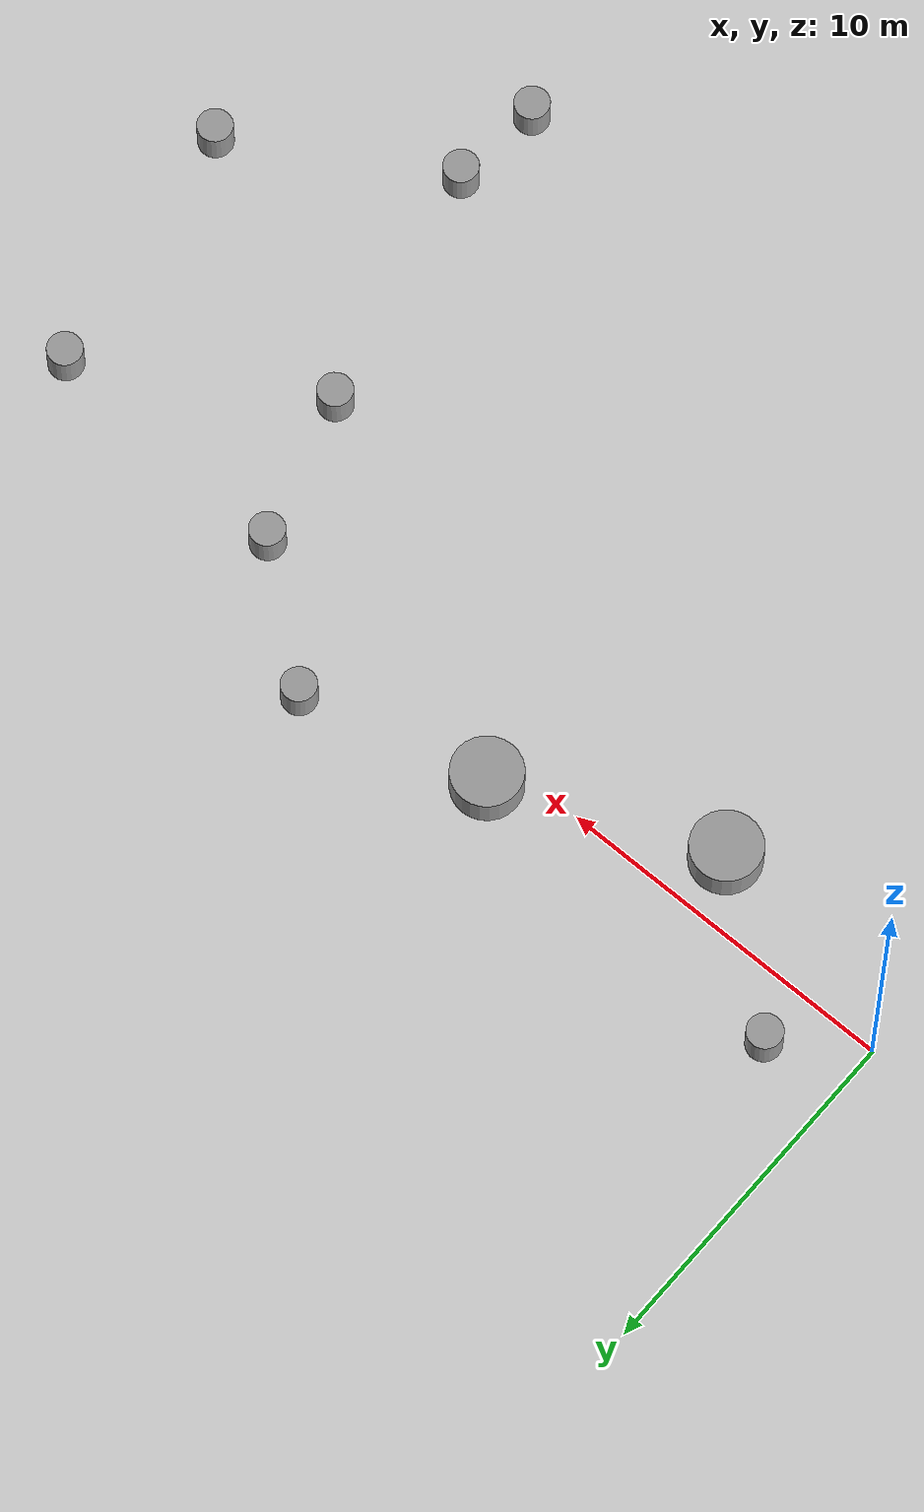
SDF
<sdf version="1.7">
 <world name="default">
  <light name="sun" type="directional">
   <pose>0 0 10 0 -0 0</pose>
   <diffuse>0.8 0.8 0.8 1</diffuse>
   <specular>0.2 0.2 0.2 1</specular>
   <attenuation>
    <range>1000</range>
    <constant>0.9</constant>
    <linear>0.01</linear>
    <quadratic>0.001</quadratic>
   </attenuation>
   <direction>-0.5 0.1 -0.9</direction>
   <spot><inner_angle>0</inner_angle><outer_angle>0</outer_angle><falloff>0</falloff></spot>
  </light>
  <model name="ground_plane">
   <static>1</static>
   <link name="link">
    <collision name="collision">
     <geometry><plane><normal>0 0 1</normal><size>100 100</size></plane></geometry>
     <surface><friction><ode><mu>100</mu><mu2>50</mu2></ode></friction></surface>
    </collision>
    <visual name="visual">
     <cast_shadows>0</cast_shadows>
     <geometry><plane><normal>0 0 1</normal><size>100 100</size></plane></geometry>
     <material>
      <script><uri>file://media/materials/scripts/gazebo.material</uri><name>Gazebo/Grey</name></script>
     </material>
    </visual>
   </link>
  </model>
  <gravity>0 0 -9.8</gravity>
  <magnetic_field>6e-06 2.3e-05 -4.2e-05</magnetic_field>
  <atmosphere type="adiabatic"/>
  <physics name="default_physics" default="0" type="ode">
   <max_step_size>0.001</max_step_size>
   <real_time_factor>1</real_time_factor>
   <real_time_update_rate>1000</real_time_update_rate>
  </physics>
  <scene><ambient>0.4 0.4 0.4 1</ambient><background>0.7 0.7 0.7 1</background><shadows>1</shadows></scene>
  <spherical_coordinates>
   <surface_model>EARTH_WGS84</surface_model>
   <latitude_deg>0</latitude_deg>
   <longitude_deg>0</longitude_deg>
   <elevation>0</elevation>
   <heading_deg>0</heading_deg>
  </spherical_coordinates>
  <model name="unit_cylinder_1">
   <pose>17.7165 2.15035 0.499997 2e-06 1e-06 0</pose>
   <link name="link">
    <inertial>
     <mass>1</mass>
     <inertia><ixx>0.145833</ixx><ixy>0</ixy><ixz>0</ixz><iyy>0.145833</iyy><iyz>0</iyz><izz>0.125</izz></inertia>
    </inertial>
    <collision name="collision">
     <geometry><cylinder><radius>0.5</radius><length>1</length></cylinder></geometry>
    </collision>
    <visual name="visual">
     <geometry><cylinder><radius>0.5</radius><length>1</length></cylinder></geometry>
     <material>
      <script><name>Gazebo/Grey</name><uri>file://media/materials/scripts/gazebo.material</uri></script>
     </material>
    </visual>
   </link>
  </model>
  <model name="unit_cylinder_1_clone">
   <pose>22.4882 -4.85282 0.499993 -0 -0 -0</pose>
   <link name="link">
    <inertial>
     <mass>1</mass>
     <inertia><ixx>0.145833</ixx><ixy>0</ixy><ixz>0</ixz><iyy>0.145833</iyy><iyz>0</iyz><izz>0.125</izz></inertia>
    </inertial>
    <collision name="collision">
     <geometry><cylinder><radius>0.5</radius><length>1</length></cylinder></geometry>
    </collision>
    <visual name="visual">
     <geometry><cylinder><radius>0.5</radius><length>1</length></cylinder></geometry>
     <material>
      <script><name>Gazebo/Grey</name><uri>file://media/materials/scripts/gazebo.material</uri></script>
     </material>
    </visual>
   </link>
  </model>
  <model name="unit_cylinder_1_clone_2">
   <pose>2.29461 1.65197 0.499999 0 -0 3.07831</pose>
   <link name="link">
    <inertial>
     <mass>1</mass>
     <inertia><ixx>0.145833</ixx><ixy>0</ixy><ixz>0</ixz><iyy>0.145833</iyy><iyz>0</iyz><izz>0.125</izz></inertia>
    </inertial>
    <collision name="collision">
     <geometry><cylinder><radius>0.5</radius><length>1</length></cylinder></geometry>
    </collision>
    <visual name="visual">
     <geometry><cylinder><radius>0.5</radius><length>1</length></cylinder></geometry>
     <material>
      <script><name>Gazebo/Grey</name><uri>file://media/materials/scripts/gazebo.material</uri></script>
     </material>
    </visual>
   </link>
  </model>
  <model name="unit_cylinder_1m">
   <link name="link">
    <inertial>
     <mass>1</mass>
     <inertia><ixx>0.145833</ixx><ixy>0</ixy><ixz>0</ixz><iyy>0.145833</iyy><iyz>0</iyz><izz>0.125</izz></inertia>
    </inertial>
    <visual name="visual">
     <geometry><cylinder><radius>1</radius><length>1</length></cylinder></geometry>
     <material>
      <script><name>Gazebo/Grey</name><uri>file://media/materials/scripts/gazebo.material</uri></script>
      <shader type="pixel"><normal_map>__default__</normal_map></shader>
      <ambient>0.3 0.3 0.3 1</ambient>
      <diffuse>0.7 0.7 0.7 1</diffuse>
      <specular>0.01 0.01 0.01 1</specular>
      <emissive>0 0 0 1</emissive>
     </material>
    </visual>
    <collision name="collision">
     <geometry><cylinder><radius>1</radius><length>1</length></cylinder></geometry>
     <surface>
      <friction>
       <ode><mu>1</mu><mu2>1</mu2><fdir1>0 0 0</fdir1><slip1>0</slip1><slip2>0</slip2></ode>
       <torsional>
        <coefficient>1</coefficient>
        <patch_radius>0</patch_radius>
        <surface_radius>0</surface_radius>
        <use_patch_radius>1</use_patch_radius>
        <ode><slip>0</slip></ode>
       </torsional>
      </friction>
      <bounce><restitution_coefficient>0</restitution_coefficient><threshold>1e+06</threshold></bounce>
      <contact>
       <collide_without_contact>0</collide_without_contact>
       <collide_without_contact_bitmask>1</collide_without_contact_bitmask>
       <collide_bitmask>1</collide_bitmask>
       <ode>
        <soft_cfm>0</soft_cfm>
        <soft_erp>0.2</soft_erp>
        <kp>1e+13</kp>
        <kd>1</kd>
        <max_vel>0.01</max_vel>
        <min_depth>0</min_depth>
       </ode>
       <bullet>
        <split_impulse>1</split_impulse>
        <split_impulse_penetration_threshold>-0.01</split_impulse_penetration_threshold>
        <soft_cfm>0</soft_cfm>
        <soft_erp>0.2</soft_erp>
        <kp>1e+13</kp>
        <kd>1</kd>
       </bullet>
      </contact>
     </surface>
    </collision>
   </link>
   <static>0</static>
   <pose>12.3833 0.825381 0.499994 4e-06 -4e-06 9.6e-05</pose>
  </model>
  <model name="unit_cylinder_1m_clone">
   <link name="link">
    <inertial>
     <mass>1</mass>
     <inertia><ixx>0.145833</ixx><ixy>0</ixy><ixz>0</ixz><iyy>0.145833</iyy><iyz>0</iyz><izz>0.125</izz></inertia>
    </inertial>
    <visual name="visual">
     <geometry><cylinder><radius>1</radius><length>1</length></cylinder></geometry>
     <material>
      <script><name>Gazebo/Grey</name><uri>file://media/materials/scripts/gazebo.material</uri></script>
      <shader type="pixel"><normal_map>__default__</normal_map></shader>
      <ambient>0.3 0.3 0.3 1</ambient>
      <diffuse>0.7 0.7 0.7 1</diffuse>
      <specular>0.01 0.01 0.01 1</specular>
      <emissive>0 0 0 1</emissive>
     </material>
    </visual>
    <collision name="collision">
     <geometry><cylinder><radius>1</radius><length>1</length></cylinder></geometry>
     <surface>
      <friction>
       <ode><mu>1</mu><mu2>1</mu2><fdir1>0 0 0</fdir1><slip1>0</slip1><slip2>0</slip2></ode>
       <torsional>
        <coefficient>1</coefficient>
        <patch_radius>0</patch_radius>
        <surface_radius>0</surface_radius>
        <use_patch_radius>1</use_patch_radius>
        <ode><slip>0</slip></ode>
       </torsional>
      </friction>
      <bounce><restitution_coefficient>0</restitution_coefficient><threshold>1e+06</threshold></bounce>
      <contact>
       <collide_without_contact>0</collide_without_contact>
       <collide_without_contact_bitmask>1</collide_without_contact_bitmask>
       <collide_bitmask>1</collide_bitmask>
       <ode>
        <soft_cfm>0</soft_cfm>
        <soft_erp>0.2</soft_erp>
        <kp>1e+13</kp>
        <kd>1</kd>
        <max_vel>0.01</max_vel>
        <min_depth>0</min_depth>
       </ode>
       <bullet>
        <split_impulse>1</split_impulse>
        <split_impulse_penetration_threshold>-0.01</split_impulse_penetration_threshold>
        <soft_cfm>0</soft_cfm>
        <soft_erp>0.2</soft_erp>
        <kp>1e+13</kp>
        <kd>1</kd>
       </bullet>
      </contact>
     </surface>
    </collision>
   </link>
   <static>0</static>
   <pose>6.3065 -1.63267 0.499996 -4e-06 3e-06 0.065575</pose>
  </model>
  <model name="unit_cylinder">
   <pose>21.2377 -0.648915 0.499994 -3e-06 -1e-06 -0</pose>
   <link name="link">
    <inertial>
     <mass>1</mass>
     <inertia><ixx>0.145833</ixx><ixy>0</ixy><ixz>0</ixz><iyy>0.145833</iyy><iyz>0</iyz><izz>0.125</izz></inertia>
    </inertial>
    <collision name="collision">
     <geometry><cylinder><radius>0.5</radius><length>1</length></cylinder></geometry>
    </collision>
    <visual name="visual">
     <geometry><cylinder><radius>0.5</radius><length>1</length></cylinder></geometry>
     <material>
      <script><name>Gazebo/Grey</name><uri>file://media/materials/scripts/gazebo.material</uri></script>
     </material>
    </visual>
   </link>
  </model>
  <model name="unit_cylinder_2">
   <pose>30.014 -8.64443 0.499993 -4e-06 -1e-06 0</pose>
   <link name="link">
    <inertial>
     <mass>1</mass>
     <inertia><ixx>0.145833</ixx><ixy>0</ixy><ixz>0</ixz><iyy>0.145833</iyy><iyz>0</iyz><izz>0.125</izz></inertia>
    </inertial>
    <collision name="collision">
     <geometry><cylinder><radius>0.5</radius><length>1</length></cylinder></geometry>
    </collision>
    <visual name="visual">
     <geometry><cylinder><radius>0.5</radius><length>1</length></cylinder></geometry>
     <material>
      <script><name>Gazebo/Grey</name><uri>file://media/materials/scripts/gazebo.material</uri></script>
     </material>
    </visual>
   </link>
  </model>
  <model name="unit_cylinder_7">
   <pose>24.1934 -12.0138 0.499994 4e-06 -1e-06 0</pose>
   <link name="link">
    <inertial>
     <mass>1</mass>
     <inertia><ixx>0.145833</ixx><ixy>0</ixy><ixz>0</ixz><iyy>0.145833</iyy><iyz>0</iyz><izz>0.125</izz></inertia>
    </inertial>
    <collision name="collision">
     <geometry><cylinder><radius>0.5</radius><length>1</length></cylinder></geometry>
    </collision>
    <visual name="visual">
     <geometry><cylinder><radius>0.5</radius><length>1</length></cylinder></geometry>
     <material>
      <script><name>Gazebo/Grey</name><uri>file://media/materials/scripts/gazebo.material</uri></script>
     </material>
    </visual>
   </link>
  </model>
  <model name="unit_cylinder_8">
   <pose>23.9566 -14.6869 0.499994 4e-06 -1e-06 0</pose>
   <link name="link">
    <inertial>
     <mass>1</mass>
     <inertia><ixx>0.145833</ixx><ixy>0</ixy><ixz>0</ixz><iyy>0.145833</iyy><iyz>0</iyz><izz>0.125</izz></inertia>
    </inertial>
    <collision name="collision">
     <geometry><cylinder><radius>0.5</radius><length>1</length></cylinder></geometry>
    </collision>
    <visual name="visual">
     <geometry><cylinder><radius>0.5</radius><length>1</length></cylinder></geometry>
     <material>
      <script><name>Gazebo/Grey</name><uri>file://media/materials/scripts/gazebo.material</uri></script>
     </material>
    </visual>
   </link>
  </model>
  <model name="unit_cylinder_14">
   <pose>28.7416 -1.09225 0.499994 -4e-06 -2e-06 -0</pose>
   <link name="link">
    <inertial>
     <mass>1</mass>
     <inertia><ixx>0.145833</ixx><ixy>0</ixy><ixz>0</ixz><iyy>0.145833</iyy><iyz>0</iyz><izz>0.125</izz></inertia>
    </inertial>
    <collision name="collision">
     <geometry><cylinder><radius>0.5</radius><length>1</length></cylinder></geometry>
    </collision>
    <visual name="visual">
     <geometry><cylinder><radius>0.5</radius><length>1</length></cylinder></geometry>
     <material>
      <script><name>Gazebo/Grey</name><uri>file://media/materials/scripts/gazebo.material</uri></script>
     </material>
    </visual>
   </link>
  </model>
 </world>
</sdf>
